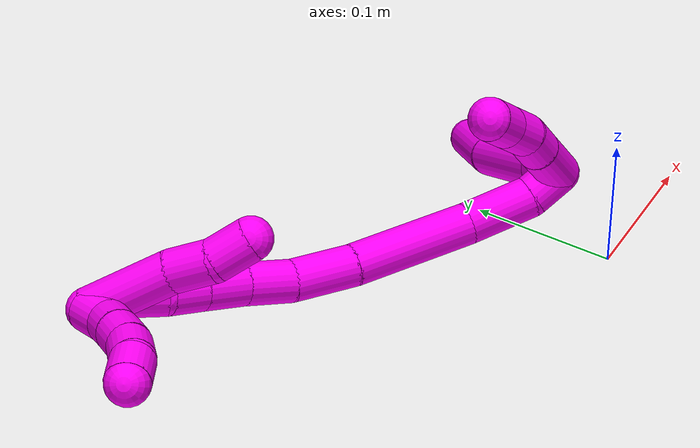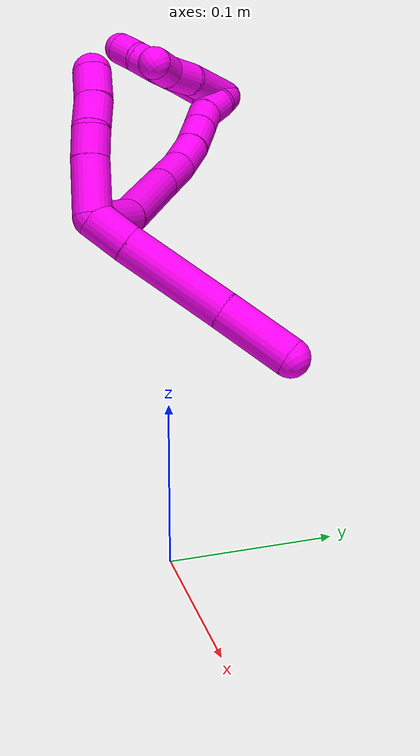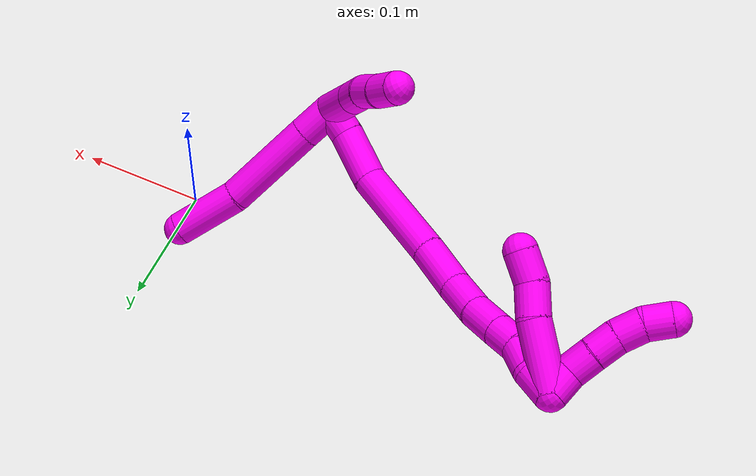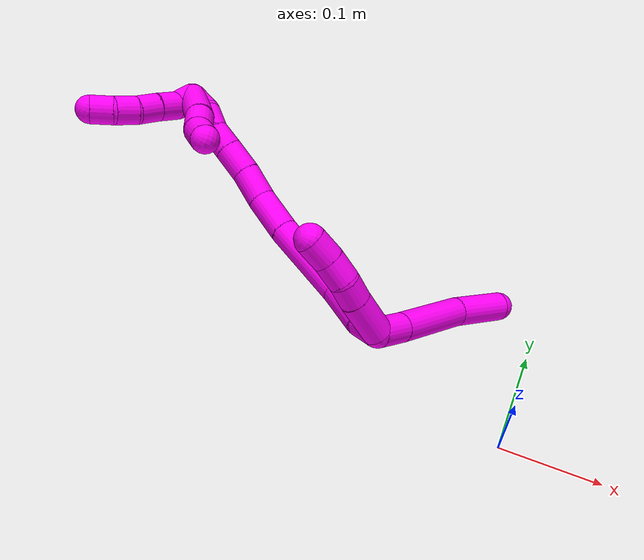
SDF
<sdf version="1.7">
 <world name="default">
  <model name="10">
   <static>0</static>
   <link name="10">
    <collision name="collision-cylinder-e_1_2_8">
     <pose>0.000682 0.00521 -0.012513 -2.74709 0.050262 -0.250236</pose>
     <geometry><cylinder><radius>0.0125</radius><length>0.027144</length></cylinder></geometry>
     <surface>
      <friction><ode><mu>1.16</mu><mu2>1.16</mu2><slip1>0</slip1><slip2>0</slip2></ode></friction>
      <contact><ode><kp>1e+06</kp><kd>1</kd><max_vel>0</max_vel><min_depth>0.001</min_depth></ode></contact>
     </surface>
    </collision>
    <visual name="visual-cylinder-e_1_2_8">
     <pose>0.000682 0.00521 -0.012513 -2.74709 0.050262 -0.250236</pose>
     <geometry><cylinder><radius>0.0125</radius><length>0.027144</length></cylinder></geometry>
     <material><ambient>1 0 0.964706 1</ambient></material>
    </visual>
    <collision name="collision-cylinder-e_2_8_9">
     <pose>0.003614 0.025695 -0.057658 -2.70377 0.06238 -0.278664</pose>
     <geometry><cylinder><radius>0.0125</radius><length>0.072199</length></cylinder></geometry>
     <surface>
      <friction><ode><mu>1.16</mu><mu2>1.16</mu2><slip1>0</slip1><slip2>0</slip2></ode></friction>
      <contact><ode><kp>1e+06</kp><kd>1</kd><max_vel>0</max_vel><min_depth>0.001</min_depth></ode></contact>
     </surface>
    </collision>
    <visual name="visual-cylinder-e_2_8_9">
     <pose>0.003614 0.025695 -0.057658 -2.70377 0.06238 -0.278664</pose>
     <geometry><cylinder><radius>0.0125</radius><length>0.072199</length></cylinder></geometry>
     <material><ambient>1 0 0.964706 1</ambient></material>
    </visual>
    <collision name="collision-cylinder-e_3_9_6">
     <pose>0.011299 0.04839 -0.113888 -2.83696 0.21624 -1.23096</pose>
     <geometry><cylinder><radius>0.0125</radius><length>0.050658</length></cylinder></geometry>
     <surface>
      <friction><ode><mu>1.16</mu><mu2>1.16</mu2><slip1>0</slip1><slip2>0</slip2></ode></friction>
      <contact><ode><kp>1e+06</kp><kd>1</kd><max_vel>0</max_vel><min_depth>0.001</min_depth></ode></contact>
     </surface>
    </collision>
    <visual name="visual-cylinder-e_3_9_6">
     <pose>0.011299 0.04839 -0.113888 -2.83696 0.21624 -1.23096</pose>
     <geometry><cylinder><radius>0.0125</radius><length>0.050658</length></cylinder></geometry>
     <material><ambient>1 0 0.964706 1</ambient></material>
    </visual>
    <collision name="collision-cylinder-e_1_2_10">
     <pose>0.004934 0.00756 0.016575 -0.427916 0.264491 -0.057791</pose>
     <geometry><cylinder><radius>0.0125</radius><length>0.037748</length></cylinder></geometry>
     <surface>
      <friction><ode><mu>1.16</mu><mu2>1.16</mu2><slip1>0</slip1><slip2>0</slip2></ode></friction>
      <contact><ode><kp>1e+06</kp><kd>1</kd><max_vel>0</max_vel><min_depth>0.001</min_depth></ode></contact>
     </surface>
    </collision>
    <visual name="visual-cylinder-e_1_2_10">
     <pose>0.004934 0.00756 0.016575 -0.427916 0.264491 -0.057791</pose>
     <geometry><cylinder><radius>0.0125</radius><length>0.037748</length></cylinder></geometry>
     <material><ambient>1 0 0.964706 1</ambient></material>
    </visual>
    <collision name="collision-cylinder-e_2_10_11">
     <pose>0.012948 0.019565 0.041611 -0.483758 0.311722 -0.077495</pose>
     <geometry><cylinder><radius>0.0125</radius><length>0.020084</length></cylinder></geometry>
     <surface>
      <friction><ode><mu>1.16</mu><mu2>1.16</mu2><slip1>0</slip1><slip2>0</slip2></ode></friction>
      <contact><ode><kp>1e+06</kp><kd>1</kd><max_vel>0</max_vel><min_depth>0.001</min_depth></ode></contact>
     </surface>
    </collision>
    <visual name="visual-cylinder-e_2_10_11">
     <pose>0.012948 0.019565 0.041611 -0.483758 0.311722 -0.077495</pose>
     <geometry><cylinder><radius>0.0125</radius><length>0.020084</length></cylinder></geometry>
     <material><ambient>1 0 0.964706 1</ambient></material>
    </visual>
    <collision name="collision-cylinder-e_3_11_12">
     <pose>0.01706 0.029871 0.058656 -0.599079 0.099022 -0.030604</pose>
     <geometry><cylinder><radius>0.0125</radius><length>0.020887</length></cylinder></geometry>
     <surface>
      <friction><ode><mu>1.16</mu><mu2>1.16</mu2><slip1>0</slip1><slip2>0</slip2></ode></friction>
      <contact><ode><kp>1e+06</kp><kd>1</kd><max_vel>0</max_vel><min_depth>0.001</min_depth></ode></contact>
     </surface>
    </collision>
    <visual name="visual-cylinder-e_3_11_12">
     <pose>0.01706 0.029871 0.058656 -0.599079 0.099022 -0.030604</pose>
     <geometry><cylinder><radius>0.0125</radius><length>0.020887</length></cylinder></geometry>
     <material><ambient>1 0 0.964706 1</ambient></material>
    </visual>
    <collision name="collision-cylinder-e_4_12_5">
     <pose>0.01886 0.040568 0.076684 -0.473235 0.072151 -0.017405</pose>
     <geometry><cylinder><radius>0.0125</radius><length>0.021281</length></cylinder></geometry>
     <surface>
      <friction><ode><mu>1.16</mu><mu2>1.16</mu2><slip1>0</slip1><slip2>0</slip2></ode></friction>
      <contact><ode><kp>1e+06</kp><kd>1</kd><max_vel>0</max_vel><min_depth>0.001</min_depth></ode></contact>
     </surface>
    </collision>
    <visual name="visual-cylinder-e_4_12_5">
     <pose>0.01886 0.040568 0.076684 -0.473235 0.072151 -0.017405</pose>
     <geometry><cylinder><radius>0.0125</radius><length>0.021281</length></cylinder></geometry>
     <material><ambient>1 0 0.964706 1</ambient></material>
    </visual>
    <collision name="collision-cylinder-e_1_2_13">
     <pose>-0.008482 0.007084 0.001153 -1.40939 -0.868567 0.751348</pose>
     <geometry><cylinder><radius>0.0125</radius><length>0.022222</length></cylinder></geometry>
     <surface>
      <friction><ode><mu>1.16</mu><mu2>1.16</mu2><slip1>0</slip1><slip2>0</slip2></ode></friction>
      <contact><ode><kp>1e+06</kp><kd>1</kd><max_vel>0</max_vel><min_depth>0.001</min_depth></ode></contact>
     </surface>
    </collision>
    <visual name="visual-cylinder-e_1_2_13">
     <pose>-0.008482 0.007084 0.001153 -1.40939 -0.868567 0.751348</pose>
     <geometry><cylinder><radius>0.0125</radius><length>0.022222</length></cylinder></geometry>
     <material><ambient>1 0 0.964706 1</ambient></material>
    </visual>
    <collision name="collision-cylinder-e_2_13_14">
     <pose>-0.028011 0.031061 0.005122 -1.40565 -0.572857 0.489019</pose>
     <geometry><cylinder><radius>0.0125</radius><length>0.04076</length></cylinder></geometry>
     <surface>
      <friction><ode><mu>1.16</mu><mu2>1.16</mu2><slip1>0</slip1><slip2>0</slip2></ode></friction>
      <contact><ode><kp>1e+06</kp><kd>1</kd><max_vel>0</max_vel><min_depth>0.001</min_depth></ode></contact>
     </surface>
    </collision>
    <visual name="visual-cylinder-e_2_13_14">
     <pose>-0.028011 0.031061 0.005122 -1.40565 -0.572857 0.489019</pose>
     <geometry><cylinder><radius>0.0125</radius><length>0.04076</length></cylinder></geometry>
     <material><ambient>1 0 0.964706 1</ambient></material>
    </visual>
    <collision name="collision-cylinder-e_3_14_15">
     <pose>-0.05651 0.078257 0.022562 -1.12116 -0.478469 0.303867</pose>
     <geometry><cylinder><radius>0.0125</radius><length>0.075809</length></cylinder></geometry>
     <surface>
      <friction><ode><mu>1.16</mu><mu2>1.16</mu2><slip1>0</slip1><slip2>0</slip2></ode></friction>
      <contact><ode><kp>1e+06</kp><kd>1</kd><max_vel>0</max_vel><min_depth>0.001</min_depth></ode></contact>
     </surface>
    </collision>
    <visual name="visual-cylinder-e_3_14_15">
     <pose>-0.05651 0.078257 0.022562 -1.12116 -0.478469 0.303867</pose>
     <geometry><cylinder><radius>0.0125</radius><length>0.075809</length></cylinder></geometry>
     <material><ambient>1 0 0.964706 1</ambient></material>
    </visual>
    <collision name="collision-cylinder-e_4_15_16">
     <pose>-0.081157 0.124738 0.044563 -1.14302 -0.384579 0.249121</pose>
     <geometry><cylinder><radius>0.0125</radius><length>0.038361</length></cylinder></geometry>
     <surface>
      <friction><ode><mu>1.16</mu><mu2>1.16</mu2><slip1>0</slip1><slip2>0</slip2></ode></friction>
      <contact><ode><kp>1e+06</kp><kd>1</kd><max_vel>0</max_vel><min_depth>0.001</min_depth></ode></contact>
     </surface>
    </collision>
    <visual name="visual-cylinder-e_4_15_16">
     <pose>-0.081157 0.124738 0.044563 -1.14302 -0.384579 0.249121</pose>
     <geometry><cylinder><radius>0.0125</radius><length>0.038361</length></cylinder></geometry>
     <material><ambient>1 0 0.964706 1</ambient></material>
    </visual>
    <collision name="collision-cylinder-e_5_16_17">
     <pose>-0.091288 0.153493 0.059088 -1.05394 -0.200126 0.116702</pose>
     <geometry><cylinder><radius>0.0125</radius><length>0.029525</length></cylinder></geometry>
     <surface>
      <friction><ode><mu>1.16</mu><mu2>1.16</mu2><slip1>0</slip1><slip2>0</slip2></ode></friction>
      <contact><ode><kp>1e+06</kp><kd>1</kd><max_vel>0</max_vel><min_depth>0.001</min_depth></ode></contact>
     </surface>
    </collision>
    <visual name="visual-cylinder-e_5_16_17">
     <pose>-0.091288 0.153493 0.059088 -1.05394 -0.200126 0.116702</pose>
     <geometry><cylinder><radius>0.0125</radius><length>0.029525</length></cylinder></geometry>
     <material><ambient>1 0 0.964706 1</ambient></material>
    </visual>
    <collision name="collision-cylinder-e_6_17_18">
     <pose>-0.097293 0.176625 0.074156 -0.927079 -0.228599 0.114643</pose>
     <geometry><cylinder><radius>0.0125</radius><length>0.027095</length></cylinder></geometry>
     <surface>
      <friction><ode><mu>1.16</mu><mu2>1.16</mu2><slip1>0</slip1><slip2>0</slip2></ode></friction>
      <contact><ode><kp>1e+06</kp><kd>1</kd><max_vel>0</max_vel><min_depth>0.001</min_depth></ode></contact>
     </surface>
    </collision>
    <visual name="visual-cylinder-e_6_17_18">
     <pose>-0.097293 0.176625 0.074156 -0.927079 -0.228599 0.114643</pose>
     <geometry><cylinder><radius>0.0125</radius><length>0.027095</length></cylinder></geometry>
     <material><ambient>1 0 0.964706 1</ambient></material>
    </visual>
    <collision name="collision-cylinder-e_7_18_19">
     <pose>-0.102904 0.195504 0.088548 -0.909893 -0.2365 0.1161</pose>
     <geometry><cylinder><radius>0.0125</radius><length>0.021694</length></cylinder></geometry>
     <surface>
      <friction><ode><mu>1.16</mu><mu2>1.16</mu2><slip1>0</slip1><slip2>0</slip2></ode></friction>
      <contact><ode><kp>1e+06</kp><kd>1</kd><max_vel>0</max_vel><min_depth>0.001</min_depth></ode></contact>
     </surface>
    </collision>
    <visual name="visual-cylinder-e_7_18_19">
     <pose>-0.102904 0.195504 0.088548 -0.909893 -0.2365 0.1161</pose>
     <geometry><cylinder><radius>0.0125</radius><length>0.021694</length></cylinder></geometry>
     <material><ambient>1 0 0.964706 1</ambient></material>
    </visual>
    <collision name="collision-cylinder-e_8_19_20">
     <pose>-0.107495 0.214118 0.098461 -1.24816 -0.186695 0.134624</pose>
     <geometry><cylinder><radius>0.0125</radius><length>0.022082</length></cylinder></geometry>
     <surface>
      <friction><ode><mu>1.16</mu><mu2>1.16</mu2><slip1>0</slip1><slip2>0</slip2></ode></friction>
      <contact><ode><kp>1e+06</kp><kd>1</kd><max_vel>0</max_vel><min_depth>0.001</min_depth></ode></contact>
     </surface>
    </collision>
    <visual name="visual-cylinder-e_8_19_20">
     <pose>-0.107495 0.214118 0.098461 -1.24816 -0.186695 0.134624</pose>
     <geometry><cylinder><radius>0.0125</radius><length>0.022082</length></cylinder></geometry>
     <material><ambient>1 0 0.964706 1</ambient></material>
    </visual>
    <collision name="collision-cylinder-e_9_20_1">
     <pose>-0.114867 0.233242 0.106334 -1.10574 -0.493999 0.308708</pose>
     <geometry><cylinder><radius>0.0125</radius><length>0.022454</length></cylinder></geometry>
     <surface>
      <friction><ode><mu>1.16</mu><mu2>1.16</mu2><slip1>0</slip1><slip2>0</slip2></ode></friction>
      <contact><ode><kp>1e+06</kp><kd>1</kd><max_vel>0</max_vel><min_depth>0.001</min_depth></ode></contact>
     </surface>
    </collision>
    <visual name="visual-cylinder-e_9_20_1">
     <pose>-0.114867 0.233242 0.106334 -1.10574 -0.493999 0.308708</pose>
     <geometry><cylinder><radius>0.0125</radius><length>0.022454</length></cylinder></geometry>
     <material><ambient>1 0 0.964706 1</ambient></material>
    </visual>
    <collision name="collision-cylinder-e_1_1_21">
     <pose>-0.105956 0.221004 0.115013 1.37196 0.5849 0.483301</pose>
     <geometry><cylinder><radius>0.0125</radius><length>0.051564</length></cylinder></geometry>
     <surface>
      <friction><ode><mu>1.16</mu><mu2>1.16</mu2><slip1>0</slip1><slip2>0</slip2></ode></friction>
      <contact><ode><kp>1e+06</kp><kd>1</kd><max_vel>0</max_vel><min_depth>0.001</min_depth></ode></contact>
     </surface>
    </collision>
    <visual name="visual-cylinder-e_1_1_21">
     <pose>-0.105956 0.221004 0.115013 1.37196 0.5849 0.483301</pose>
     <geometry><cylinder><radius>0.0125</radius><length>0.051564</length></cylinder></geometry>
     <material><ambient>1 0 0.964706 1</ambient></material>
    </visual>
    <collision name="collision-cylinder-e_2_21_22">
     <pose>-0.086816 0.188854 0.122484 1.28749 0.401969 0.303409</pose>
     <geometry><cylinder><radius>0.0125</radius><length>0.025073</length></cylinder></geometry>
     <surface>
      <friction><ode><mu>1.16</mu><mu2>1.16</mu2><slip1>0</slip1><slip2>0</slip2></ode></friction>
      <contact><ode><kp>1e+06</kp><kd>1</kd><max_vel>0</max_vel><min_depth>0.001</min_depth></ode></contact>
     </surface>
    </collision>
    <visual name="visual-cylinder-e_2_21_22">
     <pose>-0.086816 0.188854 0.122484 1.28749 0.401969 0.303409</pose>
     <geometry><cylinder><radius>0.0125</radius><length>0.025073</length></cylinder></geometry>
     <material><ambient>1 0 0.964706 1</ambient></material>
    </visual>
    <collision name="collision-cylinder-e_3_22_4">
     <pose>-0.074386 0.168906 0.126768 1.45196 0.7001 0.626812</pose>
     <geometry><cylinder><radius>0.0125</radius><length>0.023363</length></cylinder></geometry>
     <surface>
      <friction><ode><mu>1.16</mu><mu2>1.16</mu2><slip1>0</slip1><slip2>0</slip2></ode></friction>
      <contact><ode><kp>1e+06</kp><kd>1</kd><max_vel>0</max_vel><min_depth>0.001</min_depth></ode></contact>
     </surface>
    </collision>
    <visual name="visual-cylinder-e_3_22_4">
     <pose>-0.074386 0.168906 0.126768 1.45196 0.7001 0.626812</pose>
     <geometry><cylinder><radius>0.0125</radius><length>0.023363</length></cylinder></geometry>
     <material><ambient>1 0 0.964706 1</ambient></material>
    </visual>
    <collision name="collision-cylinder-e_1_1_23">
     <pose>-0.121953 0.234988 0.117596 0.803995 -0.177193 -0.075495</pose>
     <geometry><cylinder><radius>0.0125</radius><length>0.02</length></cylinder></geometry>
     <surface>
      <friction><ode><mu>1.16</mu><mu2>1.16</mu2><slip1>0</slip1><slip2>0</slip2></ode></friction>
      <contact><ode><kp>1e+06</kp><kd>1</kd><max_vel>0</max_vel><min_depth>0.001</min_depth></ode></contact>
     </surface>
    </collision>
    <visual name="visual-cylinder-e_1_1_23">
     <pose>-0.121953 0.234988 0.117596 0.803995 -0.177193 -0.075495</pose>
     <geometry><cylinder><radius>0.0125</radius><length>0.02</length></cylinder></geometry>
     <material><ambient>1 0 0.964706 1</ambient></material>
    </visual>
    <collision name="collision-cylinder-e_2_23_24">
     <pose>-0.125279 0.223484 0.133261 0.46346 -0.156968 -0.037111</pose>
     <geometry><cylinder><radius>0.0125</radius><length>0.02</length></cylinder></geometry>
     <surface>
      <friction><ode><mu>1.16</mu><mu2>1.16</mu2><slip1>0</slip1><slip2>0</slip2></ode></friction>
      <contact><ode><kp>1e+06</kp><kd>1</kd><max_vel>0</max_vel><min_depth>0.001</min_depth></ode></contact>
     </surface>
    </collision>
    <visual name="visual-cylinder-e_2_23_24">
     <pose>-0.125279 0.223484 0.133261 0.46346 -0.156968 -0.037111</pose>
     <geometry><cylinder><radius>0.0125</radius><length>0.02</length></cylinder></geometry>
     <material><ambient>1 0 0.964706 1</ambient></material>
    </visual>
    <collision name="collision-cylinder-e_3_24_25">
     <pose>-0.129025 0.214391 0.150661 0.499883 -0.22008 -0.056395</pose>
     <geometry><cylinder><radius>0.0125</radius><length>0.02</length></cylinder></geometry>
     <surface>
      <friction><ode><mu>1.16</mu><mu2>1.16</mu2><slip1>0</slip1><slip2>0</slip2></ode></friction>
      <contact><ode><kp>1e+06</kp><kd>1</kd><max_vel>0</max_vel><min_depth>0.001</min_depth></ode></contact>
     </surface>
    </collision>
    <visual name="visual-cylinder-e_3_24_25">
     <pose>-0.129025 0.214391 0.150661 0.499883 -0.22008 -0.056395</pose>
     <geometry><cylinder><radius>0.0125</radius><length>0.02</length></cylinder></geometry>
     <material><ambient>1 0 0.964706 1</ambient></material>
    </visual>
    <collision name="collision-cylinder-e_4_25_26">
     <pose>-0.134262 0.206842 0.168305 0.30631 -0.310256 -0.048271</pose>
     <geometry><cylinder><radius>0.0125</radius><length>0.02</length></cylinder></geometry>
     <surface>
      <friction><ode><mu>1.16</mu><mu2>1.16</mu2><slip1>0</slip1><slip2>0</slip2></ode></friction>
      <contact><ode><kp>1e+06</kp><kd>1</kd><max_vel>0</max_vel><min_depth>0.001</min_depth></ode></contact>
     </surface>
    </collision>
    <visual name="visual-cylinder-e_4_25_26">
     <pose>-0.134262 0.206842 0.168305 0.30631 -0.310256 -0.048271</pose>
     <geometry><cylinder><radius>0.0125</radius><length>0.02</length></cylinder></geometry>
     <material><ambient>1 0 0.964706 1</ambient></material>
    </visual>
    <collision name="collision-cylinder-e_5_26_3">
     <pose>-0.142299 0.203116 0.186011 0.098704 -0.521781 -0.026371</pose>
     <geometry><cylinder><radius>0.0125</radius><length>0.02</length></cylinder></geometry>
     <surface>
      <friction><ode><mu>1.16</mu><mu2>1.16</mu2><slip1>0</slip1><slip2>0</slip2></ode></friction>
      <contact><ode><kp>1e+06</kp><kd>1</kd><max_vel>0</max_vel><min_depth>0.001</min_depth></ode></contact>
     </surface>
    </collision>
    <visual name="visual-cylinder-e_5_26_3">
     <pose>-0.142299 0.203116 0.186011 0.098704 -0.521781 -0.026371</pose>
     <geometry><cylinder><radius>0.0125</radius><length>0.02</length></cylinder></geometry>
     <material><ambient>1 0 0.964706 1</ambient></material>
    </visual>
    <collision name="collision-sphere-3">
     <pose>-0.147283 0.202262 0.194639 0 -0 0</pose>
     <geometry><sphere><radius>0.0125</radius></sphere></geometry>
     <surface>
      <friction><ode><mu>1.16</mu><mu2>1.16</mu2><slip1>0</slip1><slip2>0</slip2></ode></friction>
      <contact><ode><kp>1e+06</kp><kd>1</kd><max_vel>0</max_vel><min_depth>0.001</min_depth></ode></contact>
     </surface>
    </collision>
    <visual name="visual-sphere-3">
     <pose>-0.147283 0.202262 0.194639 0 -0 0</pose>
     <geometry><sphere><radius>0.0125</radius></sphere></geometry>
     <material><ambient>1 0 0.964706 1</ambient></material>
    </visual>
    <collision name="collision-sphere-26">
     <pose>-0.137315 0.20397 0.177384 0 -0 0</pose>
     <geometry><sphere><radius>0.0125</radius></sphere></geometry>
     <surface>
      <friction><ode><mu>1.16</mu><mu2>1.16</mu2><slip1>0</slip1><slip2>0</slip2></ode></friction>
      <contact><ode><kp>1e+06</kp><kd>1</kd><max_vel>0</max_vel><min_depth>0.001</min_depth></ode></contact>
     </surface>
    </collision>
    <visual name="visual-sphere-26">
     <pose>-0.137315 0.20397 0.177384 0 -0 0</pose>
     <geometry><sphere><radius>0.0125</radius></sphere></geometry>
     <material><ambient>1 0 0.964706 1</ambient></material>
    </visual>
    <collision name="collision-sphere-25">
     <pose>-0.131209 0.209713 0.159226 0 -0 0</pose>
     <geometry><sphere><radius>0.0125</radius></sphere></geometry>
     <surface>
      <friction><ode><mu>1.16</mu><mu2>1.16</mu2><slip1>0</slip1><slip2>0</slip2></ode></friction>
      <contact><ode><kp>1e+06</kp><kd>1</kd><max_vel>0</max_vel><min_depth>0.001</min_depth></ode></contact>
     </surface>
    </collision>
    <visual name="visual-sphere-25">
     <pose>-0.131209 0.209713 0.159226 0 -0 0</pose>
     <geometry><sphere><radius>0.0125</radius></sphere></geometry>
     <material><ambient>1 0 0.964706 1</ambient></material>
    </visual>
    <collision name="collision-sphere-24">
     <pose>-0.126842 0.219069 0.142096 0 -0 0</pose>
     <geometry><sphere><radius>0.0125</radius></sphere></geometry>
     <surface>
      <friction><ode><mu>1.16</mu><mu2>1.16</mu2><slip1>0</slip1><slip2>0</slip2></ode></friction>
      <contact><ode><kp>1e+06</kp><kd>1</kd><max_vel>0</max_vel><min_depth>0.001</min_depth></ode></contact>
     </surface>
    </collision>
    <visual name="visual-sphere-24">
     <pose>-0.126842 0.219069 0.142096 0 -0 0</pose>
     <geometry><sphere><radius>0.0125</radius></sphere></geometry>
     <material><ambient>1 0 0.964706 1</ambient></material>
    </visual>
    <collision name="collision-sphere-23">
     <pose>-0.123716 0.2279 0.124426 0 -0 0</pose>
     <geometry><sphere><radius>0.0125</radius></sphere></geometry>
     <surface>
      <friction><ode><mu>1.16</mu><mu2>1.16</mu2><slip1>0</slip1><slip2>0</slip2></ode></friction>
      <contact><ode><kp>1e+06</kp><kd>1</kd><max_vel>0</max_vel><min_depth>0.001</min_depth></ode></contact>
     </surface>
    </collision>
    <visual name="visual-sphere-23">
     <pose>-0.123716 0.2279 0.124426 0 -0 0</pose>
     <geometry><sphere><radius>0.0125</radius></sphere></geometry>
     <material><ambient>1 0 0.964706 1</ambient></material>
    </visual>
    <collision name="collision-sphere-4">
     <pose>-0.066859 0.160035 0.127827 0 -0 0</pose>
     <geometry><sphere><radius>0.0125</radius></sphere></geometry>
     <surface>
      <friction><ode><mu>1.16</mu><mu2>1.16</mu2><slip1>0</slip1><slip2>0</slip2></ode></friction>
      <contact><ode><kp>1e+06</kp><kd>1</kd><max_vel>0</max_vel><min_depth>0.001</min_depth></ode></contact>
     </surface>
    </collision>
    <visual name="visual-sphere-4">
     <pose>-0.066859 0.160035 0.127827 0 -0 0</pose>
     <geometry><sphere><radius>0.0125</radius></sphere></geometry>
     <material><ambient>1 0 0.964706 1</ambient></material>
    </visual>
    <collision name="collision-sphere-22">
     <pose>-0.081912 0.177776 0.125709 0 -0 0</pose>
     <geometry><sphere><radius>0.0125</radius></sphere></geometry>
     <surface>
      <friction><ode><mu>1.16</mu><mu2>1.16</mu2><slip1>0</slip1><slip2>0</slip2></ode></friction>
      <contact><ode><kp>1e+06</kp><kd>1</kd><max_vel>0</max_vel><min_depth>0.001</min_depth></ode></contact>
     </surface>
    </collision>
    <visual name="visual-sphere-22">
     <pose>-0.081912 0.177776 0.125709 0 -0 0</pose>
     <geometry><sphere><radius>0.0125</radius></sphere></geometry>
     <material><ambient>1 0 0.964706 1</ambient></material>
    </visual>
    <collision name="collision-sphere-21">
     <pose>-0.091721 0.199931 0.119259 0 -0 0</pose>
     <geometry><sphere><radius>0.0125</radius></sphere></geometry>
     <surface>
      <friction><ode><mu>1.16</mu><mu2>1.16</mu2><slip1>0</slip1><slip2>0</slip2></ode></friction>
      <contact><ode><kp>1e+06</kp><kd>1</kd><max_vel>0</max_vel><min_depth>0.001</min_depth></ode></contact>
     </surface>
    </collision>
    <visual name="visual-sphere-21">
     <pose>-0.091721 0.199931 0.119259 0 -0 0</pose>
     <geometry><sphere><radius>0.0125</radius></sphere></geometry>
     <material><ambient>1 0 0.964706 1</ambient></material>
    </visual>
    <collision name="collision-sphere-1">
     <pose>-0.120191 0.242077 0.110767 0 -0 0</pose>
     <geometry><sphere><radius>0.0125</radius></sphere></geometry>
     <surface>
      <friction><ode><mu>1.16</mu><mu2>1.16</mu2><slip1>0</slip1><slip2>0</slip2></ode></friction>
      <contact><ode><kp>1e+06</kp><kd>1</kd><max_vel>0</max_vel><min_depth>0.001</min_depth></ode></contact>
     </surface>
    </collision>
    <visual name="visual-sphere-1">
     <pose>-0.120191 0.242077 0.110767 0 -0 0</pose>
     <geometry><sphere><radius>0.0125</radius></sphere></geometry>
     <material><ambient>1 0 0.964706 1</ambient></material>
    </visual>
    <collision name="collision-sphere-11">
     <pose>0.016028 0.024011 0.050073 0 -0 0</pose>
     <geometry><sphere><radius>0.0125</radius></sphere></geometry>
     <surface>
      <friction><ode><mu>1.16</mu><mu2>1.16</mu2><slip1>0</slip1><slip2>0</slip2></ode></friction>
      <contact><ode><kp>1e+06</kp><kd>1</kd><max_vel>0</max_vel><min_depth>0.001</min_depth></ode></contact>
     </surface>
    </collision>
    <visual name="visual-sphere-11">
     <pose>0.016028 0.024011 0.050073 0 -0 0</pose>
     <geometry><sphere><radius>0.0125</radius></sphere></geometry>
     <material><ambient>1 0 0.964706 1</ambient></material>
    </visual>
    <collision name="collision-sphere-10">
     <pose>0.009868 0.01512 0.03315 0 -0 0</pose>
     <geometry><sphere><radius>0.0125</radius></sphere></geometry>
     <surface>
      <friction><ode><mu>1.16</mu><mu2>1.16</mu2><slip1>0</slip1><slip2>0</slip2></ode></friction>
      <contact><ode><kp>1e+06</kp><kd>1</kd><max_vel>0</max_vel><min_depth>0.001</min_depth></ode></contact>
     </surface>
    </collision>
    <visual name="visual-sphere-10">
     <pose>0.009868 0.01512 0.03315 0 -0 0</pose>
     <geometry><sphere><radius>0.0125</radius></sphere></geometry>
     <material><ambient>1 0 0.964706 1</ambient></material>
    </visual>
    <collision name="collision-sphere-6">
     <pose>0.016734 0.05581 -0.137488 0 -0 0</pose>
     <geometry><sphere><radius>0.0125</radius></sphere></geometry>
     <surface>
      <friction><ode><mu>1.16</mu><mu2>1.16</mu2><slip1>0</slip1><slip2>0</slip2></ode></friction>
      <contact><ode><kp>1e+06</kp><kd>1</kd><max_vel>0</max_vel><min_depth>0.001</min_depth></ode></contact>
     </surface>
    </collision>
    <visual name="visual-sphere-6">
     <pose>0.016734 0.05581 -0.137488 0 -0 0</pose>
     <geometry><sphere><radius>0.0125</radius></sphere></geometry>
     <material><ambient>1 0 0.964706 1</ambient></material>
    </visual>
    <collision name="collision-sphere-9">
     <pose>0.005865 0.04097 -0.090288 0 -0 0</pose>
     <geometry><sphere><radius>0.0125</radius></sphere></geometry>
     <surface>
      <friction><ode><mu>1.16</mu><mu2>1.16</mu2><slip1>0</slip1><slip2>0</slip2></ode></friction>
      <contact><ode><kp>1e+06</kp><kd>1</kd><max_vel>0</max_vel><min_depth>0.001</min_depth></ode></contact>
     </surface>
    </collision>
    <visual name="visual-sphere-9">
     <pose>0.005865 0.04097 -0.090288 0 -0 0</pose>
     <geometry><sphere><radius>0.0125</radius></sphere></geometry>
     <material><ambient>1 0 0.964706 1</ambient></material>
    </visual>
    <collision name="collision-sphere-2">
     <geometry><sphere><radius>0.0125</radius></sphere></geometry>
     <surface>
      <friction><ode><mu>1.16</mu><mu2>1.16</mu2><slip1>0</slip1><slip2>0</slip2></ode></friction>
      <contact><ode><kp>1e+06</kp><kd>1</kd><max_vel>0</max_vel><min_depth>0.001</min_depth></ode></contact>
     </surface>
    </collision>
    <visual name="visual-sphere-2">
     <geometry><sphere><radius>0.0125</radius></sphere></geometry>
     <material><ambient>1 0 0.964706 1</ambient></material>
    </visual>
    <collision name="collision-sphere-19">
     <pose>-0.105445 0.203828 0.095021 0 -0 0</pose>
     <geometry><sphere><radius>0.0125</radius></sphere></geometry>
     <surface>
      <friction><ode><mu>1.16</mu><mu2>1.16</mu2><slip1>0</slip1><slip2>0</slip2></ode></friction>
      <contact><ode><kp>1e+06</kp><kd>1</kd><max_vel>0</max_vel><min_depth>0.001</min_depth></ode></contact>
     </surface>
    </collision>
    <visual name="visual-sphere-19">
     <pose>-0.105445 0.203828 0.095021 0 -0 0</pose>
     <geometry><sphere><radius>0.0125</radius></sphere></geometry>
     <material><ambient>1 0 0.964706 1</ambient></material>
    </visual>
    <collision name="collision-sphere-8">
     <pose>0.001364 0.01042 -0.025027 0 -0 0</pose>
     <geometry><sphere><radius>0.0125</radius></sphere></geometry>
     <surface>
      <friction><ode><mu>1.16</mu><mu2>1.16</mu2><slip1>0</slip1><slip2>0</slip2></ode></friction>
      <contact><ode><kp>1e+06</kp><kd>1</kd><max_vel>0</max_vel><min_depth>0.001</min_depth></ode></contact>
     </surface>
    </collision>
    <visual name="visual-sphere-8">
     <pose>0.001364 0.01042 -0.025027 0 -0 0</pose>
     <geometry><sphere><radius>0.0125</radius></sphere></geometry>
     <material><ambient>1 0 0.964706 1</ambient></material>
    </visual>
    <collision name="collision-sphere-12">
     <pose>0.018093 0.035731 0.067238 0 -0 0</pose>
     <geometry><sphere><radius>0.0125</radius></sphere></geometry>
     <surface>
      <friction><ode><mu>1.16</mu><mu2>1.16</mu2><slip1>0</slip1><slip2>0</slip2></ode></friction>
      <contact><ode><kp>1e+06</kp><kd>1</kd><max_vel>0</max_vel><min_depth>0.001</min_depth></ode></contact>
     </surface>
    </collision>
    <visual name="visual-sphere-12">
     <pose>0.018093 0.035731 0.067238 0 -0 0</pose>
     <geometry><sphere><radius>0.0125</radius></sphere></geometry>
     <material><ambient>1 0 0.964706 1</ambient></material>
    </visual>
    <collision name="collision-sphere-5">
     <pose>0.019627 0.045405 0.086131 0 -0 0</pose>
     <geometry><sphere><radius>0.0125</radius></sphere></geometry>
     <surface>
      <friction><ode><mu>1.16</mu><mu2>1.16</mu2><slip1>0</slip1><slip2>0</slip2></ode></friction>
      <contact><ode><kp>1e+06</kp><kd>1</kd><max_vel>0</max_vel><min_depth>0.001</min_depth></ode></contact>
     </surface>
    </collision>
    <visual name="visual-sphere-5">
     <pose>0.019627 0.045405 0.086131 0 -0 0</pose>
     <geometry><sphere><radius>0.0125</radius></sphere></geometry>
     <material><ambient>1 0 0.964706 1</ambient></material>
    </visual>
    <collision name="collision-sphere-13">
     <pose>-0.016964 0.014167 0.002307 0 -0 0</pose>
     <geometry><sphere><radius>0.0125</radius></sphere></geometry>
     <surface>
      <friction><ode><mu>1.16</mu><mu2>1.16</mu2><slip1>0</slip1><slip2>0</slip2></ode></friction>
      <contact><ode><kp>1e+06</kp><kd>1</kd><max_vel>0</max_vel><min_depth>0.001</min_depth></ode></contact>
     </surface>
    </collision>
    <visual name="visual-sphere-13">
     <pose>-0.016964 0.014167 0.002307 0 -0 0</pose>
     <geometry><sphere><radius>0.0125</radius></sphere></geometry>
     <material><ambient>1 0 0.964706 1</ambient></material>
    </visual>
    <collision name="collision-sphere-14">
     <pose>-0.039058 0.047954 0.007938 0 -0 0</pose>
     <geometry><sphere><radius>0.0125</radius></sphere></geometry>
     <surface>
      <friction><ode><mu>1.16</mu><mu2>1.16</mu2><slip1>0</slip1><slip2>0</slip2></ode></friction>
      <contact><ode><kp>1e+06</kp><kd>1</kd><max_vel>0</max_vel><min_depth>0.001</min_depth></ode></contact>
     </surface>
    </collision>
    <visual name="visual-sphere-14">
     <pose>-0.039058 0.047954 0.007938 0 -0 0</pose>
     <geometry><sphere><radius>0.0125</radius></sphere></geometry>
     <material><ambient>1 0 0.964706 1</ambient></material>
    </visual>
    <collision name="collision-sphere-15">
     <pose>-0.073962 0.108561 0.037187 0 -0 0</pose>
     <geometry><sphere><radius>0.0125</radius></sphere></geometry>
     <surface>
      <friction><ode><mu>1.16</mu><mu2>1.16</mu2><slip1>0</slip1><slip2>0</slip2></ode></friction>
      <contact><ode><kp>1e+06</kp><kd>1</kd><max_vel>0</max_vel><min_depth>0.001</min_depth></ode></contact>
     </surface>
    </collision>
    <visual name="visual-sphere-15">
     <pose>-0.073962 0.108561 0.037187 0 -0 0</pose>
     <geometry><sphere><radius>0.0125</radius></sphere></geometry>
     <material><ambient>1 0 0.964706 1</ambient></material>
    </visual>
    <collision name="collision-sphere-16">
     <pose>-0.088353 0.140915 0.051938 0 -0 0</pose>
     <geometry><sphere><radius>0.0125</radius></sphere></geometry>
     <surface>
      <friction><ode><mu>1.16</mu><mu2>1.16</mu2><slip1>0</slip1><slip2>0</slip2></ode></friction>
      <contact><ode><kp>1e+06</kp><kd>1</kd><max_vel>0</max_vel><min_depth>0.001</min_depth></ode></contact>
     </surface>
    </collision>
    <visual name="visual-sphere-16">
     <pose>-0.088353 0.140915 0.051938 0 -0 0</pose>
     <geometry><sphere><radius>0.0125</radius></sphere></geometry>
     <material><ambient>1 0 0.964706 1</ambient></material>
    </visual>
    <collision name="collision-sphere-17">
     <pose>-0.094223 0.166071 0.066237 0 -0 0</pose>
     <geometry><sphere><radius>0.0125</radius></sphere></geometry>
     <surface>
      <friction><ode><mu>1.16</mu><mu2>1.16</mu2><slip1>0</slip1><slip2>0</slip2></ode></friction>
      <contact><ode><kp>1e+06</kp><kd>1</kd><max_vel>0</max_vel><min_depth>0.001</min_depth></ode></contact>
     </surface>
    </collision>
    <visual name="visual-sphere-17">
     <pose>-0.094223 0.166071 0.066237 0 -0 0</pose>
     <geometry><sphere><radius>0.0125</radius></sphere></geometry>
     <material><ambient>1 0 0.964706 1</ambient></material>
    </visual>
    <collision name="collision-sphere-18">
     <pose>-0.100363 0.187179 0.082075 0 -0 0</pose>
     <geometry><sphere><radius>0.0125</radius></sphere></geometry>
     <surface>
      <friction><ode><mu>1.16</mu><mu2>1.16</mu2><slip1>0</slip1><slip2>0</slip2></ode></friction>
      <contact><ode><kp>1e+06</kp><kd>1</kd><max_vel>0</max_vel><min_depth>0.001</min_depth></ode></contact>
     </surface>
    </collision>
    <visual name="visual-sphere-18">
     <pose>-0.100363 0.187179 0.082075 0 -0 0</pose>
     <geometry><sphere><radius>0.0125</radius></sphere></geometry>
     <material><ambient>1 0 0.964706 1</ambient></material>
    </visual>
    <collision name="collision-sphere-20">
     <pose>-0.109544 0.224407 0.101901 0 -0 0</pose>
     <geometry><sphere><radius>0.0125</radius></sphere></geometry>
     <surface>
      <friction><ode><mu>1.16</mu><mu2>1.16</mu2><slip1>0</slip1><slip2>0</slip2></ode></friction>
      <contact><ode><kp>1e+06</kp><kd>1</kd><max_vel>0</max_vel><min_depth>0.001</min_depth></ode></contact>
     </surface>
    </collision>
    <visual name="visual-sphere-20">
     <pose>-0.109544 0.224407 0.101901 0 -0 0</pose>
     <geometry><sphere><radius>0.0125</radius></sphere></geometry>
     <material><ambient>1 0 0.964706 1</ambient></material>
    </visual>
    <inertial>
     <pose>-0.055497 0.112016 0.04669 0 -0 0</pose>
     <mass>0.75</mass>
     <inertia>
      <ixx>0.000122</ixx>
      <ixy>0</ixy>
      <ixz>0</ixz>
      <iyy>4.1e-05</iyy>
      <iyz>0</iyz>
      <izz>-3.3e-05</izz>
     </inertia>
    </inertial>
   </link>
   <pose>-0.120362 -0.01494 0.175986 0.163296 -0.818994 0.270446</pose>
  </model>
 </world>
</sdf>
